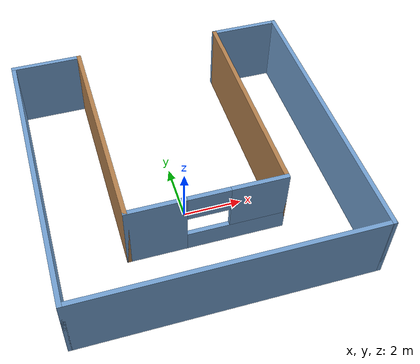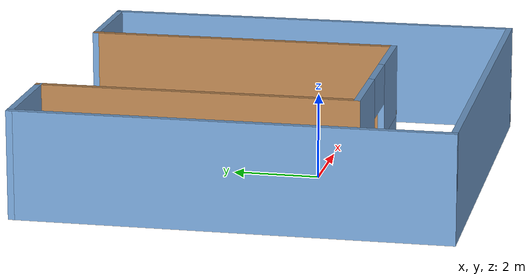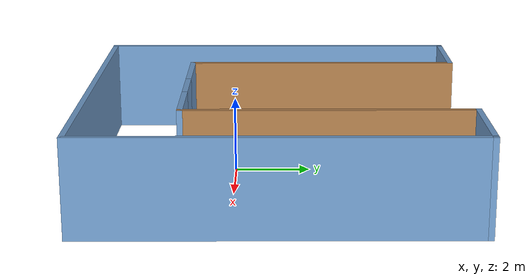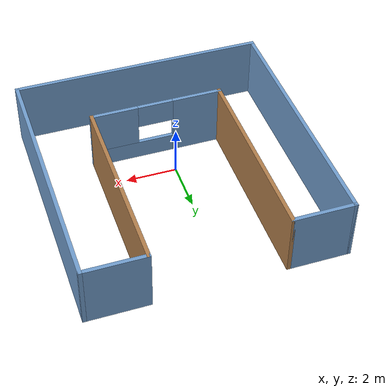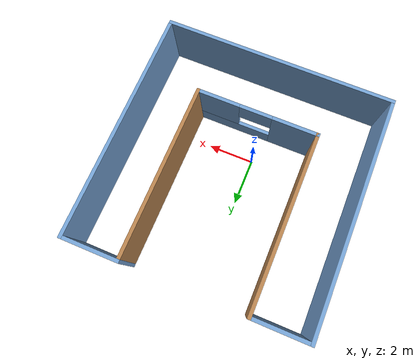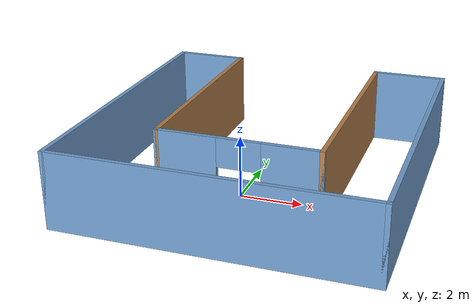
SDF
<?xml version='1.0'?>
<sdf version='1.6'>
  <model name='building'>
    <pose frame=''>0.368966 1.1493 0 0 -0 0</pose>
    <link name='Wall_39'>
      <collision name='Wall_39_Collision'>
        <geometry>
          <box>
            <size>10 0.15 2.5</size>
          </box>
        </geometry>
        <pose frame=''>0 0 1.25 0 -0 0</pose>
      </collision>
      <visual name='Wall_39_Visual'>
        <pose frame=''>0 0 1.25 0 -0 0</pose>
        <geometry>
          <box>
            <size>10 0.15 2.5</size>
          </box>
        </geometry>
        <material>
          <script>
            <uri>file://media/materials/scripts/gazebo.material</uri>
            <name>Gazebo/Grey</name>
          </script>
          <ambient>0.447059 0.623529 0.811765 1</ambient>
        </material>
        <meta>
          <layer>0</layer>
        </meta>
      </visual>
      <pose frame=''>-4.925 0 0 0 -0 -1.5708</pose>
    </link>
    <link name='Wall_40'>
      <collision name='Wall_40_Collision'>
        <geometry>
          <box>
            <size>10 0.15 2.5</size>
          </box>
        </geometry>
        <pose frame=''>0 0 1.25 0 -0 0</pose>
      </collision>
      <visual name='Wall_40_Visual'>
        <pose frame=''>0 0 1.25 0 -0 0</pose>
        <geometry>
          <box>
            <size>10 0.15 2.5</size>
          </box>
        </geometry>
        <material>
          <script>
            <uri>file://media/materials/scripts/gazebo.material</uri>
            <name>Gazebo/Grey</name>
          </script>
          <ambient>0.447059 0.623529 0.811765 1</ambient>
        </material>
        <meta>
          <layer>0</layer>
        </meta>
      </visual>
      <pose frame=''>-0 -4.925 0 0 -0 0</pose>
    </link>
    <link name='Wall_41'>
      <collision name='Wall_41_Collision'>
        <geometry>
          <box>
            <size>10 0.15 2.5</size>
          </box>
        </geometry>
        <pose frame=''>0 0 1.25 0 -0 0</pose>
      </collision>
      <visual name='Wall_41_Visual'>
        <pose frame=''>0 0 1.25 0 -0 0</pose>
        <geometry>
          <box>
            <size>10 0.15 2.5</size>
          </box>
        </geometry>
        <material>
          <script>
            <uri>file://media/materials/scripts/gazebo.material</uri>
            <name>Gazebo/Grey</name>
          </script>
          <ambient>0.447059 0.623529 0.811765 1</ambient>
        </material>
        <meta>
          <layer>0</layer>
        </meta>
      </visual>
      <pose frame=''>4.925 0 0 0 -0 1.5708</pose>
    </link>
    <link name='Wall_42'>
      <collision name='Wall_42_Collision'>
        <geometry>
          <box>
            <size>2.5 0.15 2.5</size>
          </box>
        </geometry>
        <pose frame=''>0 0 1.25 0 -0 0</pose>
      </collision>
      <visual name='Wall_42_Visual'>
        <pose frame=''>0 0 1.25 0 -0 0</pose>
        <geometry>
          <box>
            <size>2.5 0.15 2.5</size>
          </box>
        </geometry>
        <material>
          <script>
            <uri>file://media/materials/scripts/gazebo.material</uri>
            <name>Gazebo/Grey</name>
          </script>
          <ambient>0.447059 0.623529 0.811765 1</ambient>
        </material>
        <meta>
          <layer>0</layer>
        </meta>
      </visual>
      <pose frame=''>3.75 4.925 0 0 -0 3.14159</pose>
    </link>
    <link name='Wall_43'>
      <collision name='Wall_43_Collision'>
        <geometry>
          <box>
            <size>7.5 0.15 2.5</size>
          </box>
        </geometry>
        <pose frame=''>0 0 1.25 0 -0 0</pose>
      </collision>
      <visual name='Wall_43_Visual'>
        <pose frame=''>0 0 1.25 0 -0 0</pose>
        <geometry>
          <box>
            <size>7.5 0.15 2.5</size>
          </box>
        </geometry>
        <material>
          <script>
            <uri>file://media/materials/scripts/gazebo.material</uri>
            <name>Gazebo/Wood</name>
          </script>
          <ambient>1 1 1 1</ambient>
        </material>
        <meta>
          <layer>0</layer>
        </meta>
      </visual>
      <pose frame=''>2.575 1.25 0 0 -0 -1.5708</pose>
    </link>
    <link name='Wall_45'>
      <collision name='Wall_45_Collision'>
        <geometry>
          <box>
            <size>2.5 0.15 2.5</size>
          </box>
        </geometry>
        <pose frame=''>0 0 1.25 0 -0 0</pose>
      </collision>
      <visual name='Wall_45_Visual'>
        <pose frame=''>0 0 1.25 0 -0 0</pose>
        <geometry>
          <box>
            <size>2.5 0.15 2.5</size>
          </box>
        </geometry>
        <material>
          <script>
            <uri>file://media/materials/scripts/gazebo.material</uri>
            <name>Gazebo/Grey</name>
          </script>
          <ambient>0.447059 0.623529 0.811765 1</ambient>
        </material>
        <meta>
          <layer>0</layer>
        </meta>
      </visual>
      <pose frame=''>-3.75 4.925 0 0 -0 0</pose>
    </link>
    <link name='Wall_46'>
      <collision name='Wall_46_Collision'>
        <geometry>
          <box>
            <size>7.5 0.15 2.5</size>
          </box>
        </geometry>
        <pose frame=''>0 0 1.25 0 -0 0</pose>
      </collision>
      <visual name='Wall_46_Visual'>
        <pose frame=''>0 0 1.25 0 -0 0</pose>
        <geometry>
          <box>
            <size>7.5 0.15 2.5</size>
          </box>
        </geometry>
        <material>
          <script>
            <uri>file://media/materials/scripts/gazebo.material</uri>
            <name>Gazebo/Wood</name>
          </script>
          <ambient>1 1 1 1</ambient>
        </material>
        <meta>
          <layer>0</layer>
        </meta>
      </visual>
      <pose frame=''>-2.575 1.25 0 0 -0 -1.5708</pose>
    </link>
    <link name='Wall_47'>
      <pose frame=''>-0 -2.425 0 0 -0 0</pose>
      <visual name='Wall_47_Visual_0'>
        <pose frame=''>-1.64824 0 1.25 0 -0 0</pose>
        <geometry>
          <box>
            <size>2.00351 0.15 2.5</size>
          </box>
        </geometry>
        <material>
          <script>
            <uri>file://media/materials/scripts/gazebo.material</uri>
            <name>Gazebo/Grey</name>
          </script>
          <ambient>0.447059 0.623529 0.811765 1</ambient>
        </material>
        <meta>
          <layer>0</layer>
        </meta>
      </visual>
      <collision name='Wall_47_Collision_0'>
        <geometry>
          <box>
            <size>2.00351 0.15 2.5</size>
          </box>
        </geometry>
        <pose frame=''>-1.64824 0 1.25 0 -0 0</pose>
      </collision>
      <visual name='Wall_47_Visual_1'>
        <pose frame=''>1.00176 0 0.375 0 -0 0</pose>
        <geometry>
          <box>
            <size>3.29649 0.15 0.75</size>
          </box>
        </geometry>
        <material>
          <script>
            <uri>file://media/materials/scripts/gazebo.material</uri>
            <name>Gazebo/Grey</name>
          </script>
          <ambient>0.447059 0.623529 0.811765 1</ambient>
        </material>
        <meta>
          <layer>0</layer>
        </meta>
      </visual>
      <collision name='Wall_47_Collision_1'>
        <geometry>
          <box>
            <size>3.29649 0.15 0.75</size>
          </box>
        </geometry>
        <pose frame=''>1.00176 0 0.375 0 -0 0</pose>
      </collision>
      <visual name='Wall_47_Visual_2'>
        <pose frame=''>1.70212 0 1.625 0 -0 0</pose>
        <geometry>
          <box>
            <size>1.89577 0.15 1.75</size>
          </box>
        </geometry>
        <material>
          <script>
            <uri>file://media/materials/scripts/gazebo.material</uri>
            <name>Gazebo/Grey</name>
          </script>
          <ambient>0.447059 0.623529 0.811765 1</ambient>
        </material>
        <meta>
          <layer>0</layer>
        </meta>
      </visual>
      <collision name='Wall_47_Collision_2'>
        <geometry>
          <box>
            <size>1.89577 0.15 1.75</size>
          </box>
        </geometry>
        <pose frame=''>1.70212 0 1.625 0 -0 0</pose>
      </collision>
      <visual name='Wall_47_Visual_3'>
        <pose frame=''>0.053871 0 2.025 0 -0 0</pose>
        <geometry>
          <box>
            <size>1.40072 0.15 0.95</size>
          </box>
        </geometry>
        <material>
          <script>
            <uri>file://media/materials/scripts/gazebo.material</uri>
            <name>Gazebo/Grey</name>
          </script>
          <ambient>0.447059 0.623529 0.811765 1</ambient>
        </material>
        <meta>
          <layer>0</layer>
        </meta>
      </visual>
      <collision name='Wall_47_Collision_3'>
        <geometry>
          <box>
            <size>1.40072 0.15 0.95</size>
          </box>
        </geometry>
        <pose frame=''>0.053871 0 2.025 0 -0 0</pose>
      </collision>
    </link>
    <static>1</static>
  </model>
</sdf>
